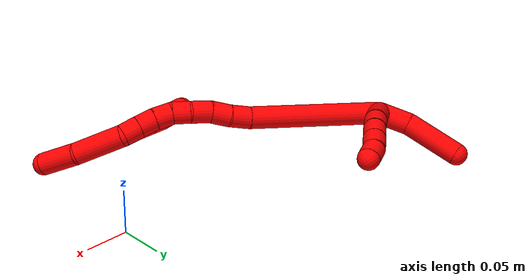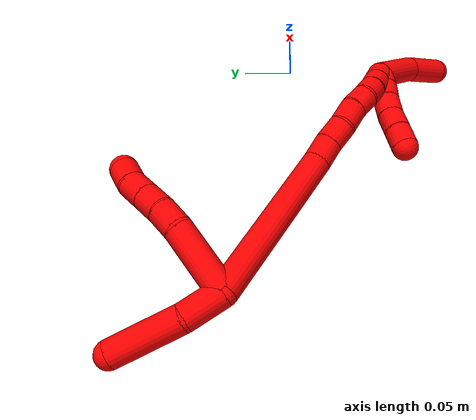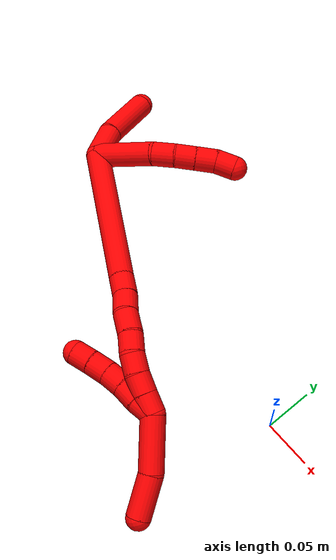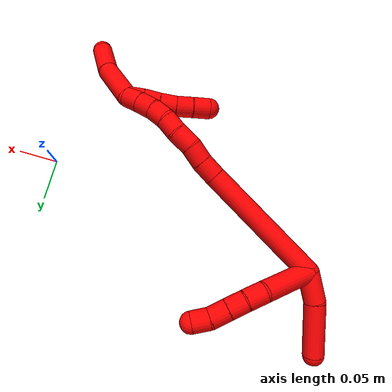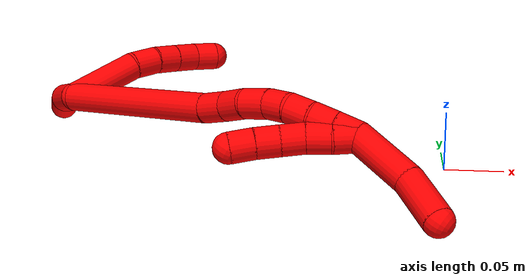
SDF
<sdf version="1.7">
 <world name="default">
  <model name="2">
   <static>0</static>
   <link name="2">
    <collision name="collision-cylinder-e_1_2_8">
     <pose>0.007991 0.029522 -0.008074 -1.83777 0.255402 -0.333346</pose>
     <geometry><cylinder><radius>0.0125</radius><length>0.063264</length></cylinder></geometry>
     <surface>
      <friction><ode><mu>1.16</mu><mu2>1.16</mu2><slip1>0</slip1><slip2>0</slip2></ode></friction>
      <contact><ode><kp>1e+06</kp><kd>1</kd><max_vel>0</max_vel><min_depth>0.001</min_depth></ode></contact>
     </surface>
    </collision>
    <visual name="visual-cylinder-e_1_2_8">
     <pose>0.007991 0.029522 -0.008074 -1.83777 0.255402 -0.333346</pose>
     <geometry><cylinder><radius>0.0125</radius><length>0.063264</length></cylinder></geometry>
     <material><ambient>1 0 0 1</ambient></material>
    </visual>
    <collision name="collision-cylinder-e_2_8_9">
     <pose>0.016389 0.069861 -0.020445 -1.94882 0.034861 -0.051347</pose>
     <geometry><cylinder><radius>0.0125</radius><length>0.023293</length></cylinder></geometry>
     <surface>
      <friction><ode><mu>1.16</mu><mu2>1.16</mu2><slip1>0</slip1><slip2>0</slip2></ode></friction>
      <contact><ode><kp>1e+06</kp><kd>1</kd><max_vel>0</max_vel><min_depth>0.001</min_depth></ode></contact>
     </surface>
    </collision>
    <visual name="visual-cylinder-e_2_8_9">
     <pose>0.016389 0.069861 -0.020445 -1.94882 0.034861 -0.051347</pose>
     <geometry><cylinder><radius>0.0125</radius><length>0.023293</length></cylinder></geometry>
     <material><ambient>1 0 0 1</ambient></material>
    </visual>
    <collision name="collision-cylinder-e_3_9_10">
     <pose>0.015709 0.090194 -0.029065 -1.99732 -0.10349 0.160499</pose>
     <geometry><cylinder><radius>0.0125</radius><length>0.021017</length></cylinder></geometry>
     <surface>
      <friction><ode><mu>1.16</mu><mu2>1.16</mu2><slip1>0</slip1><slip2>0</slip2></ode></friction>
      <contact><ode><kp>1e+06</kp><kd>1</kd><max_vel>0</max_vel><min_depth>0.001</min_depth></ode></contact>
     </surface>
    </collision>
    <visual name="visual-cylinder-e_3_9_10">
     <pose>0.015709 0.090194 -0.029065 -1.99732 -0.10349 0.160499</pose>
     <geometry><cylinder><radius>0.0125</radius><length>0.021017</length></cylinder></geometry>
     <material><ambient>1 0 0 1</ambient></material>
    </visual>
    <collision name="collision-cylinder-e_4_10_11">
     <pose>0.013377 0.109506 -0.037941 -2.0058 -0.114907 0.179815</pose>
     <geometry><cylinder><radius>0.0125</radius><length>0.021748</length></cylinder></geometry>
     <surface>
      <friction><ode><mu>1.16</mu><mu2>1.16</mu2><slip1>0</slip1><slip2>0</slip2></ode></friction>
      <contact><ode><kp>1e+06</kp><kd>1</kd><max_vel>0</max_vel><min_depth>0.001</min_depth></ode></contact>
     </surface>
    </collision>
    <visual name="visual-cylinder-e_4_10_11">
     <pose>0.013377 0.109506 -0.037941 -2.0058 -0.114907 0.179815</pose>
     <geometry><cylinder><radius>0.0125</radius><length>0.021748</length></cylinder></geometry>
     <material><ambient>1 0 0 1</ambient></material>
    </visual>
    <collision name="collision-cylinder-e_5_11_6">
     <pose>0.012454 0.12759 -0.048667 -2.21106 0.031306 -0.062345</pose>
     <geometry><cylinder><radius>0.0125</radius><length>0.020679</length></cylinder></geometry>
     <surface>
      <friction><ode><mu>1.16</mu><mu2>1.16</mu2><slip1>0</slip1><slip2>0</slip2></ode></friction>
      <contact><ode><kp>1e+06</kp><kd>1</kd><max_vel>0</max_vel><min_depth>0.001</min_depth></ode></contact>
     </surface>
    </collision>
    <visual name="visual-cylinder-e_5_11_6">
     <pose>0.012454 0.12759 -0.048667 -2.21106 0.031306 -0.062345</pose>
     <geometry><cylinder><radius>0.0125</radius><length>0.020679</length></cylinder></geometry>
     <material><ambient>1 0 0 1</ambient></material>
    </visual>
    <collision name="collision-cylinder-e_1_2_12">
     <pose>-0.012944 0.007308 0.010082 -0.62718 -0.804781 0.274312</pose>
     <geometry><cylinder><radius>0.0125</radius><length>0.035922</length></cylinder></geometry>
     <surface>
      <friction><ode><mu>1.16</mu><mu2>1.16</mu2><slip1>0</slip1><slip2>0</slip2></ode></friction>
      <contact><ode><kp>1e+06</kp><kd>1</kd><max_vel>0</max_vel><min_depth>0.001</min_depth></ode></contact>
     </surface>
    </collision>
    <visual name="visual-cylinder-e_1_2_12">
     <pose>-0.012944 0.007308 0.010082 -0.62718 -0.804781 0.274312</pose>
     <geometry><cylinder><radius>0.0125</radius><length>0.035922</length></cylinder></geometry>
     <material><ambient>1 0 0 1</ambient></material>
    </visual>
    <collision name="collision-cylinder-e_2_12_5">
     <pose>-0.050558 0.031499 0.031691 -0.971772 -0.878812 0.486649</pose>
     <geometry><cylinder><radius>0.0125</radius><length>0.064078</length></cylinder></geometry>
     <surface>
      <friction><ode><mu>1.16</mu><mu2>1.16</mu2><slip1>0</slip1><slip2>0</slip2></ode></friction>
      <contact><ode><kp>1e+06</kp><kd>1</kd><max_vel>0</max_vel><min_depth>0.001</min_depth></ode></contact>
     </surface>
    </collision>
    <visual name="visual-cylinder-e_2_12_5">
     <pose>-0.050558 0.031499 0.031691 -0.971772 -0.878812 0.486649</pose>
     <geometry><cylinder><radius>0.0125</radius><length>0.064078</length></cylinder></geometry>
     <material><ambient>1 0 0 1</ambient></material>
    </visual>
    <collision name="collision-cylinder-e_1_2_13">
     <pose>0.041052 0.001507 -0.063659 -3.11793 0.572633 -3.06124</pose>
     <geometry><cylinder><radius>0.0125</radius><length>0.151525</length></cylinder></geometry>
     <surface>
      <friction><ode><mu>1.16</mu><mu2>1.16</mu2><slip1>0</slip1><slip2>0</slip2></ode></friction>
      <contact><ode><kp>1e+06</kp><kd>1</kd><max_vel>0</max_vel><min_depth>0.001</min_depth></ode></contact>
     </surface>
    </collision>
    <visual name="visual-cylinder-e_1_2_13">
     <pose>0.041052 0.001507 -0.063659 -3.11793 0.572633 -3.06124</pose>
     <geometry><cylinder><radius>0.0125</radius><length>0.151525</length></cylinder></geometry>
     <material><ambient>1 0 0 1</ambient></material>
    </visual>
    <collision name="collision-cylinder-e_2_13_14">
     <pose>0.089524 0.003686 -0.135921 -3.06362 0.710203 -2.93199</pose>
     <geometry><cylinder><radius>0.0125</radius><length>0.022763</length></cylinder></geometry>
     <surface>
      <friction><ode><mu>1.16</mu><mu2>1.16</mu2><slip1>0</slip1><slip2>0</slip2></ode></friction>
      <contact><ode><kp>1e+06</kp><kd>1</kd><max_vel>0</max_vel><min_depth>0.001</min_depth></ode></contact>
     </surface>
    </collision>
    <visual name="visual-cylinder-e_2_13_14">
     <pose>0.089524 0.003686 -0.135921 -3.06362 0.710203 -2.93199</pose>
     <geometry><cylinder><radius>0.0125</radius><length>0.022763</length></cylinder></geometry>
     <material><ambient>1 0 0 1</ambient></material>
    </visual>
    <collision name="collision-cylinder-e_3_14_15">
     <pose>0.104827 0.003671 -0.152191 3.05227 0.797303 2.93018</pose>
     <geometry><cylinder><radius>0.0125</radius><length>0.022036</length></cylinder></geometry>
     <surface>
      <friction><ode><mu>1.16</mu><mu2>1.16</mu2><slip1>0</slip1><slip2>0</slip2></ode></friction>
      <contact><ode><kp>1e+06</kp><kd>1</kd><max_vel>0</max_vel><min_depth>0.001</min_depth></ode></contact>
     </surface>
    </collision>
    <visual name="visual-cylinder-e_3_14_15">
     <pose>0.104827 0.003671 -0.152191 3.05227 0.797303 2.93018</pose>
     <geometry><cylinder><radius>0.0125</radius><length>0.022036</length></cylinder></geometry>
     <material><ambient>1 0 0 1</ambient></material>
    </visual>
    <collision name="collision-cylinder-e_4_15_16">
     <pose>0.119349 0.003746 -0.169502 -3.06282 0.601457 -2.88883</pose>
     <geometry><cylinder><radius>0.0125</radius><length>0.023464</length></cylinder></geometry>
     <surface>
      <friction><ode><mu>1.16</mu><mu2>1.16</mu2><slip1>0</slip1><slip2>0</slip2></ode></friction>
      <contact><ode><kp>1e+06</kp><kd>1</kd><max_vel>0</max_vel><min_depth>0.001</min_depth></ode></contact>
     </surface>
    </collision>
    <visual name="visual-cylinder-e_4_15_16">
     <pose>0.119349 0.003746 -0.169502 -3.06282 0.601457 -2.88883</pose>
     <geometry><cylinder><radius>0.0125</radius><length>0.023464</length></cylinder></geometry>
     <material><ambient>1 0 0 1</ambient></material>
    </visual>
    <collision name="collision-cylinder-e_5_16_17">
     <pose>0.130996 0.003541 -0.187796 3.03041 0.522087 2.73083</pose>
     <geometry><cylinder><radius>0.0125</radius><length>0.020086</length></cylinder></geometry>
     <surface>
      <friction><ode><mu>1.16</mu><mu2>1.16</mu2><slip1>0</slip1><slip2>0</slip2></ode></friction>
      <contact><ode><kp>1e+06</kp><kd>1</kd><max_vel>0</max_vel><min_depth>0.001</min_depth></ode></contact>
     </surface>
    </collision>
    <visual name="visual-cylinder-e_5_16_17">
     <pose>0.130996 0.003541 -0.187796 3.03041 0.522087 2.73083</pose>
     <geometry><cylinder><radius>0.0125</radius><length>0.020086</length></cylinder></geometry>
     <material><ambient>1 0 0 1</ambient></material>
    </visual>
    <collision name="collision-cylinder-e_6_17_18">
     <pose>0.138775 0.002598 -0.206091 -3.13922 0.279817 -3.12472</pose>
     <geometry><cylinder><radius>0.0125</radius><length>0.020067</length></cylinder></geometry>
     <surface>
      <friction><ode><mu>1.16</mu><mu2>1.16</mu2><slip1>0</slip1><slip2>0</slip2></ode></friction>
      <contact><ode><kp>1e+06</kp><kd>1</kd><max_vel>0</max_vel><min_depth>0.001</min_depth></ode></contact>
     </surface>
    </collision>
    <visual name="visual-cylinder-e_6_17_18">
     <pose>0.138775 0.002598 -0.206091 -3.13922 0.279817 -3.12472</pose>
     <geometry><cylinder><radius>0.0125</radius><length>0.020067</length></cylinder></geometry>
     <material><ambient>1 0 0 1</ambient></material>
    </visual>
    <collision name="collision-cylinder-e_7_18_19">
     <pose>0.143171 0.003722 -0.225561 -3.03002 0.162791 -1.94099</pose>
     <geometry><cylinder><radius>0.0125</radius><length>0.020042</length></cylinder></geometry>
     <surface>
      <friction><ode><mu>1.16</mu><mu2>1.16</mu2><slip1>0</slip1><slip2>0</slip2></ode></friction>
      <contact><ode><kp>1e+06</kp><kd>1</kd><max_vel>0</max_vel><min_depth>0.001</min_depth></ode></contact>
     </surface>
    </collision>
    <visual name="visual-cylinder-e_7_18_19">
     <pose>0.143171 0.003722 -0.225561 -3.03002 0.162791 -1.94099</pose>
     <geometry><cylinder><radius>0.0125</radius><length>0.020042</length></cylinder></geometry>
     <material><ambient>1 0 0 1</ambient></material>
    </visual>
    <collision name="collision-cylinder-e_8_19_1">
     <pose>0.146079 0.006177 -0.245221 -3.00474 0.128626 -1.50864</pose>
     <geometry><cylinder><radius>0.0125</radius><length>0.020017</length></cylinder></geometry>
     <surface>
      <friction><ode><mu>1.16</mu><mu2>1.16</mu2><slip1>0</slip1><slip2>0</slip2></ode></friction>
      <contact><ode><kp>1e+06</kp><kd>1</kd><max_vel>0</max_vel><min_depth>0.001</min_depth></ode></contact>
     </surface>
    </collision>
    <visual name="visual-cylinder-e_8_19_1">
     <pose>0.146079 0.006177 -0.245221 -3.00474 0.128626 -1.50864</pose>
     <geometry><cylinder><radius>0.0125</radius><length>0.020017</length></cylinder></geometry>
     <material><ambient>1 0 0 1</ambient></material>
    </visual>
    <collision name="collision-cylinder-e_1_1_20">
     <pose>0.144639 0.001453 -0.247595 0.683781 -0.275841 -0.098709</pose>
     <geometry><cylinder><radius>0.0125</radius><length>0.02</length></cylinder></geometry>
     <surface>
      <friction><ode><mu>1.16</mu><mu2>1.16</mu2><slip1>0</slip1><slip2>0</slip2></ode></friction>
      <contact><ode><kp>1e+06</kp><kd>1</kd><max_vel>0</max_vel><min_depth>0.001</min_depth></ode></contact>
     </surface>
    </collision>
    <visual name="visual-cylinder-e_1_1_20">
     <pose>0.144639 0.001453 -0.247595 0.683781 -0.275841 -0.098709</pose>
     <geometry><cylinder><radius>0.0125</radius><length>0.02</length></cylinder></geometry>
     <material><ambient>1 0 0 1</ambient></material>
    </visual>
    <collision name="collision-cylinder-e_2_20_21">
     <pose>0.138871 -0.009545 -0.23198 0.542696 -0.309304 -0.08669</pose>
     <geometry><cylinder><radius>0.0125</radius><length>0.02</length></cylinder></geometry>
     <surface>
      <friction><ode><mu>1.16</mu><mu2>1.16</mu2><slip1>0</slip1><slip2>0</slip2></ode></friction>
      <contact><ode><kp>1e+06</kp><kd>1</kd><max_vel>0</max_vel><min_depth>0.001</min_depth></ode></contact>
     </surface>
    </collision>
    <visual name="visual-cylinder-e_2_20_21">
     <pose>0.138871 -0.009545 -0.23198 0.542696 -0.309304 -0.08669</pose>
     <geometry><cylinder><radius>0.0125</radius><length>0.02</length></cylinder></geometry>
     <material><ambient>1 0 0 1</ambient></material>
    </visual>
    <collision name="collision-cylinder-e_3_21_22">
     <pose>0.132582 -0.020529 -0.216564 0.695997 -0.330513 -0.120854</pose>
     <geometry><cylinder><radius>0.0125</radius><length>0.02</length></cylinder></geometry>
     <surface>
      <friction><ode><mu>1.16</mu><mu2>1.16</mu2><slip1>0</slip1><slip2>0</slip2></ode></friction>
      <contact><ode><kp>1e+06</kp><kd>1</kd><max_vel>0</max_vel><min_depth>0.001</min_depth></ode></contact>
     </surface>
    </collision>
    <visual name="visual-cylinder-e_3_21_22">
     <pose>0.132582 -0.020529 -0.216564 0.695997 -0.330513 -0.120854</pose>
     <geometry><cylinder><radius>0.0125</radius><length>0.02</length></cylinder></geometry>
     <material><ambient>1 0 0 1</ambient></material>
    </visual>
    <collision name="collision-cylinder-e_4_22_23">
     <pose>0.126888 -0.033431 -0.202431 0.782751 -0.247411 -0.102531</pose>
     <geometry><cylinder><radius>0.0125</radius><length>0.02</length></cylinder></geometry>
     <surface>
      <friction><ode><mu>1.16</mu><mu2>1.16</mu2><slip1>0</slip1><slip2>0</slip2></ode></friction>
      <contact><ode><kp>1e+06</kp><kd>1</kd><max_vel>0</max_vel><min_depth>0.001</min_depth></ode></contact>
     </surface>
    </collision>
    <visual name="visual-cylinder-e_4_22_23">
     <pose>0.126888 -0.033431 -0.202431 0.782751 -0.247411 -0.102531</pose>
     <geometry><cylinder><radius>0.0125</radius><length>0.02</length></cylinder></geometry>
     <material><ambient>1 0 0 1</ambient></material>
    </visual>
    <collision name="collision-cylinder-e_5_23_4">
     <pose>0.121529 -0.04734 -0.189114 0.831802 -0.295297 -0.13119</pose>
     <geometry><cylinder><radius>0.0125</radius><length>0.02</length></cylinder></geometry>
     <surface>
      <friction><ode><mu>1.16</mu><mu2>1.16</mu2><slip1>0</slip1><slip2>0</slip2></ode></friction>
      <contact><ode><kp>1e+06</kp><kd>1</kd><max_vel>0</max_vel><min_depth>0.001</min_depth></ode></contact>
     </surface>
    </collision>
    <visual name="visual-cylinder-e_5_23_4">
     <pose>0.121529 -0.04734 -0.189114 0.831802 -0.295297 -0.13119</pose>
     <geometry><cylinder><radius>0.0125</radius><length>0.02</length></cylinder></geometry>
     <material><ambient>1 0 0 1</ambient></material>
    </visual>
    <collision name="collision-cylinder-e_1_1_24">
     <pose>0.151238 -0.000798 -0.281635 2.83793 0.138248 0.849844</pose>
     <geometry><cylinder><radius>0.0125</radius><length>0.056248</length></cylinder></geometry>
     <surface>
      <friction><ode><mu>1.16</mu><mu2>1.16</mu2><slip1>0</slip1><slip2>0</slip2></ode></friction>
      <contact><ode><kp>1e+06</kp><kd>1</kd><max_vel>0</max_vel><min_depth>0.001</min_depth></ode></contact>
     </surface>
    </collision>
    <visual name="visual-cylinder-e_1_1_24">
     <pose>0.151238 -0.000798 -0.281635 2.83793 0.138248 0.849844</pose>
     <geometry><cylinder><radius>0.0125</radius><length>0.056248</length></cylinder></geometry>
     <material><ambient>1 0 0 1</ambient></material>
    </visual>
    <collision name="collision-cylinder-e_2_24_3">
     <pose>0.157538 -0.020711 -0.326615 2.57968 0.111032 0.380479</pose>
     <geometry><cylinder><radius>0.0125</radius><length>0.043752</length></cylinder></geometry>
     <surface>
      <friction><ode><mu>1.16</mu><mu2>1.16</mu2><slip1>0</slip1><slip2>0</slip2></ode></friction>
      <contact><ode><kp>1e+06</kp><kd>1</kd><max_vel>0</max_vel><min_depth>0.001</min_depth></ode></contact>
     </surface>
    </collision>
    <visual name="visual-cylinder-e_2_24_3">
     <pose>0.157538 -0.020711 -0.326615 2.57968 0.111032 0.380479</pose>
     <geometry><cylinder><radius>0.0125</radius><length>0.043752</length></cylinder></geometry>
     <material><ambient>1 0 0 1</ambient></material>
    </visual>
    <collision name="collision-sphere-3">
     <pose>0.159962 -0.032295 -0.345013 0 -0 0</pose>
     <geometry><sphere><radius>0.0125</radius></sphere></geometry>
     <surface>
      <friction><ode><mu>1.16</mu><mu2>1.16</mu2><slip1>0</slip1><slip2>0</slip2></ode></friction>
      <contact><ode><kp>1e+06</kp><kd>1</kd><max_vel>0</max_vel><min_depth>0.001</min_depth></ode></contact>
     </surface>
    </collision>
    <visual name="visual-sphere-3">
     <pose>0.159962 -0.032295 -0.345013 0 -0 0</pose>
     <geometry><sphere><radius>0.0125</radius></sphere></geometry>
     <material><ambient>1 0 0 1</ambient></material>
    </visual>
    <collision name="collision-sphere-24">
     <pose>0.155114 -0.009127 -0.308216 0 -0 0</pose>
     <geometry><sphere><radius>0.0125</radius></sphere></geometry>
     <surface>
      <friction><ode><mu>1.16</mu><mu2>1.16</mu2><slip1>0</slip1><slip2>0</slip2></ode></friction>
      <contact><ode><kp>1e+06</kp><kd>1</kd><max_vel>0</max_vel><min_depth>0.001</min_depth></ode></contact>
     </surface>
    </collision>
    <visual name="visual-sphere-24">
     <pose>0.155114 -0.009127 -0.308216 0 -0 0</pose>
     <geometry><sphere><radius>0.0125</radius></sphere></geometry>
     <material><ambient>1 0 0 1</ambient></material>
    </visual>
    <collision name="collision-sphere-4">
     <pose>0.118618 -0.054411 -0.18267 0 -0 0</pose>
     <geometry><sphere><radius>0.0125</radius></sphere></geometry>
     <surface>
      <friction><ode><mu>1.16</mu><mu2>1.16</mu2><slip1>0</slip1><slip2>0</slip2></ode></friction>
      <contact><ode><kp>1e+06</kp><kd>1</kd><max_vel>0</max_vel><min_depth>0.001</min_depth></ode></contact>
     </surface>
    </collision>
    <visual name="visual-sphere-4">
     <pose>0.118618 -0.054411 -0.18267 0 -0 0</pose>
     <geometry><sphere><radius>0.0125</radius></sphere></geometry>
     <material><ambient>1 0 0 1</ambient></material>
    </visual>
    <collision name="collision-sphere-23">
     <pose>0.124439 -0.040268 -0.195558 0 -0 0</pose>
     <geometry><sphere><radius>0.0125</radius></sphere></geometry>
     <surface>
      <friction><ode><mu>1.16</mu><mu2>1.16</mu2><slip1>0</slip1><slip2>0</slip2></ode></friction>
      <contact><ode><kp>1e+06</kp><kd>1</kd><max_vel>0</max_vel><min_depth>0.001</min_depth></ode></contact>
     </surface>
    </collision>
    <visual name="visual-sphere-23">
     <pose>0.124439 -0.040268 -0.195558 0 -0 0</pose>
     <geometry><sphere><radius>0.0125</radius></sphere></geometry>
     <material><ambient>1 0 0 1</ambient></material>
    </visual>
    <collision name="collision-sphere-22">
     <pose>0.129337 -0.026593 -0.209305 0 -0 0</pose>
     <geometry><sphere><radius>0.0125</radius></sphere></geometry>
     <surface>
      <friction><ode><mu>1.16</mu><mu2>1.16</mu2><slip1>0</slip1><slip2>0</slip2></ode></friction>
      <contact><ode><kp>1e+06</kp><kd>1</kd><max_vel>0</max_vel><min_depth>0.001</min_depth></ode></contact>
     </surface>
    </collision>
    <visual name="visual-sphere-22">
     <pose>0.129337 -0.026593 -0.209305 0 -0 0</pose>
     <geometry><sphere><radius>0.0125</radius></sphere></geometry>
     <material><ambient>1 0 0 1</ambient></material>
    </visual>
    <collision name="collision-sphere-21">
     <pose>0.135827 -0.014464 -0.223823 0 -0 0</pose>
     <geometry><sphere><radius>0.0125</radius></sphere></geometry>
     <surface>
      <friction><ode><mu>1.16</mu><mu2>1.16</mu2><slip1>0</slip1><slip2>0</slip2></ode></friction>
      <contact><ode><kp>1e+06</kp><kd>1</kd><max_vel>0</max_vel><min_depth>0.001</min_depth></ode></contact>
     </surface>
    </collision>
    <visual name="visual-sphere-21">
     <pose>0.135827 -0.014464 -0.223823 0 -0 0</pose>
     <geometry><sphere><radius>0.0125</radius></sphere></geometry>
     <material><ambient>1 0 0 1</ambient></material>
    </visual>
    <collision name="collision-sphere-20">
     <pose>0.141915 -0.004625 -0.240137 0 -0 0</pose>
     <geometry><sphere><radius>0.0125</radius></sphere></geometry>
     <surface>
      <friction><ode><mu>1.16</mu><mu2>1.16</mu2><slip1>0</slip1><slip2>0</slip2></ode></friction>
      <contact><ode><kp>1e+06</kp><kd>1</kd><max_vel>0</max_vel><min_depth>0.001</min_depth></ode></contact>
     </surface>
    </collision>
    <visual name="visual-sphere-20">
     <pose>0.141915 -0.004625 -0.240137 0 -0 0</pose>
     <geometry><sphere><radius>0.0125</radius></sphere></geometry>
     <material><ambient>1 0 0 1</ambient></material>
    </visual>
    <collision name="collision-sphere-6">
     <pose>0.012777 0.135877 -0.054841 0 -0 0</pose>
     <geometry><sphere><radius>0.0125</radius></sphere></geometry>
     <surface>
      <friction><ode><mu>1.16</mu><mu2>1.16</mu2><slip1>0</slip1><slip2>0</slip2></ode></friction>
      <contact><ode><kp>1e+06</kp><kd>1</kd><max_vel>0</max_vel><min_depth>0.001</min_depth></ode></contact>
     </surface>
    </collision>
    <visual name="visual-sphere-6">
     <pose>0.012777 0.135877 -0.054841 0 -0 0</pose>
     <geometry><sphere><radius>0.0125</radius></sphere></geometry>
     <material><ambient>1 0 0 1</ambient></material>
    </visual>
    <collision name="collision-sphere-11">
     <pose>0.01213 0.119302 -0.042493 0 -0 0</pose>
     <geometry><sphere><radius>0.0125</radius></sphere></geometry>
     <surface>
      <friction><ode><mu>1.16</mu><mu2>1.16</mu2><slip1>0</slip1><slip2>0</slip2></ode></friction>
      <contact><ode><kp>1e+06</kp><kd>1</kd><max_vel>0</max_vel><min_depth>0.001</min_depth></ode></contact>
     </surface>
    </collision>
    <visual name="visual-sphere-11">
     <pose>0.01213 0.119302 -0.042493 0 -0 0</pose>
     <geometry><sphere><radius>0.0125</radius></sphere></geometry>
     <material><ambient>1 0 0 1</ambient></material>
    </visual>
    <collision name="collision-sphere-10">
     <pose>0.014623 0.09971 -0.033389 0 -0 0</pose>
     <geometry><sphere><radius>0.0125</radius></sphere></geometry>
     <surface>
      <friction><ode><mu>1.16</mu><mu2>1.16</mu2><slip1>0</slip1><slip2>0</slip2></ode></friction>
      <contact><ode><kp>1e+06</kp><kd>1</kd><max_vel>0</max_vel><min_depth>0.001</min_depth></ode></contact>
     </surface>
    </collision>
    <visual name="visual-sphere-10">
     <pose>0.014623 0.09971 -0.033389 0 -0 0</pose>
     <geometry><sphere><radius>0.0125</radius></sphere></geometry>
     <material><ambient>1 0 0 1</ambient></material>
    </visual>
    <collision name="collision-sphere-9">
     <pose>0.016795 0.080678 -0.02474 0 -0 0</pose>
     <geometry><sphere><radius>0.0125</radius></sphere></geometry>
     <surface>
      <friction><ode><mu>1.16</mu><mu2>1.16</mu2><slip1>0</slip1><slip2>0</slip2></ode></friction>
      <contact><ode><kp>1e+06</kp><kd>1</kd><max_vel>0</max_vel><min_depth>0.001</min_depth></ode></contact>
     </surface>
    </collision>
    <visual name="visual-sphere-9">
     <pose>0.016795 0.080678 -0.02474 0 -0 0</pose>
     <geometry><sphere><radius>0.0125</radius></sphere></geometry>
     <material><ambient>1 0 0 1</ambient></material>
    </visual>
    <collision name="collision-sphere-2">
     <geometry><sphere><radius>0.0125</radius></sphere></geometry>
     <surface>
      <friction><ode><mu>1.16</mu><mu2>1.16</mu2><slip1>0</slip1><slip2>0</slip2></ode></friction>
      <contact><ode><kp>1e+06</kp><kd>1</kd><max_vel>0</max_vel><min_depth>0.001</min_depth></ode></contact>
     </surface>
    </collision>
    <visual name="visual-sphere-2">
     <geometry><sphere><radius>0.0125</radius></sphere></geometry>
     <material><ambient>1 0 0 1</ambient></material>
    </visual>
    <collision name="collision-sphere-19">
     <pose>0.144795 0.004823 -0.235389 0 -0 0</pose>
     <geometry><sphere><radius>0.0125</radius></sphere></geometry>
     <surface>
      <friction><ode><mu>1.16</mu><mu2>1.16</mu2><slip1>0</slip1><slip2>0</slip2></ode></friction>
      <contact><ode><kp>1e+06</kp><kd>1</kd><max_vel>0</max_vel><min_depth>0.001</min_depth></ode></contact>
     </surface>
    </collision>
    <visual name="visual-sphere-19">
     <pose>0.144795 0.004823 -0.235389 0 -0 0</pose>
     <geometry><sphere><radius>0.0125</radius></sphere></geometry>
     <material><ambient>1 0 0 1</ambient></material>
    </visual>
    <collision name="collision-sphere-8">
     <pose>0.015983 0.059043 -0.016149 0 -0 0</pose>
     <geometry><sphere><radius>0.0125</radius></sphere></geometry>
     <surface>
      <friction><ode><mu>1.16</mu><mu2>1.16</mu2><slip1>0</slip1><slip2>0</slip2></ode></friction>
      <contact><ode><kp>1e+06</kp><kd>1</kd><max_vel>0</max_vel><min_depth>0.001</min_depth></ode></contact>
     </surface>
    </collision>
    <visual name="visual-sphere-8">
     <pose>0.015983 0.059043 -0.016149 0 -0 0</pose>
     <geometry><sphere><radius>0.0125</radius></sphere></geometry>
     <material><ambient>1 0 0 1</ambient></material>
    </visual>
    <collision name="collision-sphere-12">
     <pose>-0.025889 0.014615 0.020164 0 -0 0</pose>
     <geometry><sphere><radius>0.0125</radius></sphere></geometry>
     <surface>
      <friction><ode><mu>1.16</mu><mu2>1.16</mu2><slip1>0</slip1><slip2>0</slip2></ode></friction>
      <contact><ode><kp>1e+06</kp><kd>1</kd><max_vel>0</max_vel><min_depth>0.001</min_depth></ode></contact>
     </surface>
    </collision>
    <visual name="visual-sphere-12">
     <pose>-0.025889 0.014615 0.020164 0 -0 0</pose>
     <geometry><sphere><radius>0.0125</radius></sphere></geometry>
     <material><ambient>1 0 0 1</ambient></material>
    </visual>
    <collision name="collision-sphere-5">
     <pose>-0.075227 0.048382 0.043217 0 -0 0</pose>
     <geometry><sphere><radius>0.0125</radius></sphere></geometry>
     <surface>
      <friction><ode><mu>1.16</mu><mu2>1.16</mu2><slip1>0</slip1><slip2>0</slip2></ode></friction>
      <contact><ode><kp>1e+06</kp><kd>1</kd><max_vel>0</max_vel><min_depth>0.001</min_depth></ode></contact>
     </surface>
    </collision>
    <visual name="visual-sphere-5">
     <pose>-0.075227 0.048382 0.043217 0 -0 0</pose>
     <geometry><sphere><radius>0.0125</radius></sphere></geometry>
     <material><ambient>1 0 0 1</ambient></material>
    </visual>
    <collision name="collision-sphere-13">
     <pose>0.082103 0.003014 -0.127317 0 -0 0</pose>
     <geometry><sphere><radius>0.0125</radius></sphere></geometry>
     <surface>
      <friction><ode><mu>1.16</mu><mu2>1.16</mu2><slip1>0</slip1><slip2>0</slip2></ode></friction>
      <contact><ode><kp>1e+06</kp><kd>1</kd><max_vel>0</max_vel><min_depth>0.001</min_depth></ode></contact>
     </surface>
    </collision>
    <visual name="visual-sphere-13">
     <pose>0.082103 0.003014 -0.127317 0 -0 0</pose>
     <geometry><sphere><radius>0.0125</radius></sphere></geometry>
     <material><ambient>1 0 0 1</ambient></material>
    </visual>
    <collision name="collision-sphere-14">
     <pose>0.096944 0.004358 -0.144524 0 -0 0</pose>
     <geometry><sphere><radius>0.0125</radius></sphere></geometry>
     <surface>
      <friction><ode><mu>1.16</mu><mu2>1.16</mu2><slip1>0</slip1><slip2>0</slip2></ode></friction>
      <contact><ode><kp>1e+06</kp><kd>1</kd><max_vel>0</max_vel><min_depth>0.001</min_depth></ode></contact>
     </surface>
    </collision>
    <visual name="visual-sphere-14">
     <pose>0.096944 0.004358 -0.144524 0 -0 0</pose>
     <geometry><sphere><radius>0.0125</radius></sphere></geometry>
     <material><ambient>1 0 0 1</ambient></material>
    </visual>
    <collision name="collision-sphere-15">
     <pose>0.11271 0.002985 -0.159858 0 -0 0</pose>
     <geometry><sphere><radius>0.0125</radius></sphere></geometry>
     <surface>
      <friction><ode><mu>1.16</mu><mu2>1.16</mu2><slip1>0</slip1><slip2>0</slip2></ode></friction>
      <contact><ode><kp>1e+06</kp><kd>1</kd><max_vel>0</max_vel><min_depth>0.001</min_depth></ode></contact>
     </surface>
    </collision>
    <visual name="visual-sphere-15">
     <pose>0.11271 0.002985 -0.159858 0 -0 0</pose>
     <geometry><sphere><radius>0.0125</radius></sphere></geometry>
     <material><ambient>1 0 0 1</ambient></material>
    </visual>
    <collision name="collision-sphere-16">
     <pose>0.125988 0.004507 -0.179145 0 -0 0</pose>
     <geometry><sphere><radius>0.0125</radius></sphere></geometry>
     <surface>
      <friction><ode><mu>1.16</mu><mu2>1.16</mu2><slip1>0</slip1><slip2>0</slip2></ode></friction>
      <contact><ode><kp>1e+06</kp><kd>1</kd><max_vel>0</max_vel><min_depth>0.001</min_depth></ode></contact>
     </surface>
    </collision>
    <visual name="visual-sphere-16">
     <pose>0.125988 0.004507 -0.179145 0 -0 0</pose>
     <geometry><sphere><radius>0.0125</radius></sphere></geometry>
     <material><ambient>1 0 0 1</ambient></material>
    </visual>
    <collision name="collision-sphere-17">
     <pose>0.136004 0.002575 -0.196447 0 -0 0</pose>
     <geometry><sphere><radius>0.0125</radius></sphere></geometry>
     <surface>
      <friction><ode><mu>1.16</mu><mu2>1.16</mu2><slip1>0</slip1><slip2>0</slip2></ode></friction>
      <contact><ode><kp>1e+06</kp><kd>1</kd><max_vel>0</max_vel><min_depth>0.001</min_depth></ode></contact>
     </surface>
    </collision>
    <visual name="visual-sphere-17">
     <pose>0.136004 0.002575 -0.196447 0 -0 0</pose>
     <geometry><sphere><radius>0.0125</radius></sphere></geometry>
     <material><ambient>1 0 0 1</ambient></material>
    </visual>
    <collision name="collision-sphere-18">
     <pose>0.141546 0.002621 -0.215734 0 -0 0</pose>
     <geometry><sphere><radius>0.0125</radius></sphere></geometry>
     <surface>
      <friction><ode><mu>1.16</mu><mu2>1.16</mu2><slip1>0</slip1><slip2>0</slip2></ode></friction>
      <contact><ode><kp>1e+06</kp><kd>1</kd><max_vel>0</max_vel><min_depth>0.001</min_depth></ode></contact>
     </surface>
    </collision>
    <visual name="visual-sphere-18">
     <pose>0.141546 0.002621 -0.215734 0 -0 0</pose>
     <geometry><sphere><radius>0.0125</radius></sphere></geometry>
     <material><ambient>1 0 0 1</ambient></material>
    </visual>
    <collision name="collision-sphere-1">
     <pose>0.147362 0.007532 -0.255054 0 -0 0</pose>
     <geometry><sphere><radius>0.0125</radius></sphere></geometry>
     <surface>
      <friction><ode><mu>1.16</mu><mu2>1.16</mu2><slip1>0</slip1><slip2>0</slip2></ode></friction>
      <contact><ode><kp>1e+06</kp><kd>1</kd><max_vel>0</max_vel><min_depth>0.001</min_depth></ode></contact>
     </surface>
    </collision>
    <visual name="visual-sphere-1">
     <pose>0.147362 0.007532 -0.255054 0 -0 0</pose>
     <geometry><sphere><radius>0.0125</radius></sphere></geometry>
     <material><ambient>1 0 0 1</ambient></material>
    </visual>
    <inertial>
     <pose>0.068439 0.013807 -0.120439 0 -0 0</pose>
     <mass>0.75</mass>
     <inertia>
      <ixx>-0.000184</ixx>
      <ixy>0</ixy>
      <ixz>0</ixz>
      <iyy>0.000311</iyy>
      <iyz>0</iyz>
      <izz>-0.000207</izz>
     </inertia>
    </inertial>
   </link>
   <pose>-0.32923 0.051774 0.042832 0.516169 -1.01359 -0.969501</pose>
  </model>
 </world>
</sdf>
